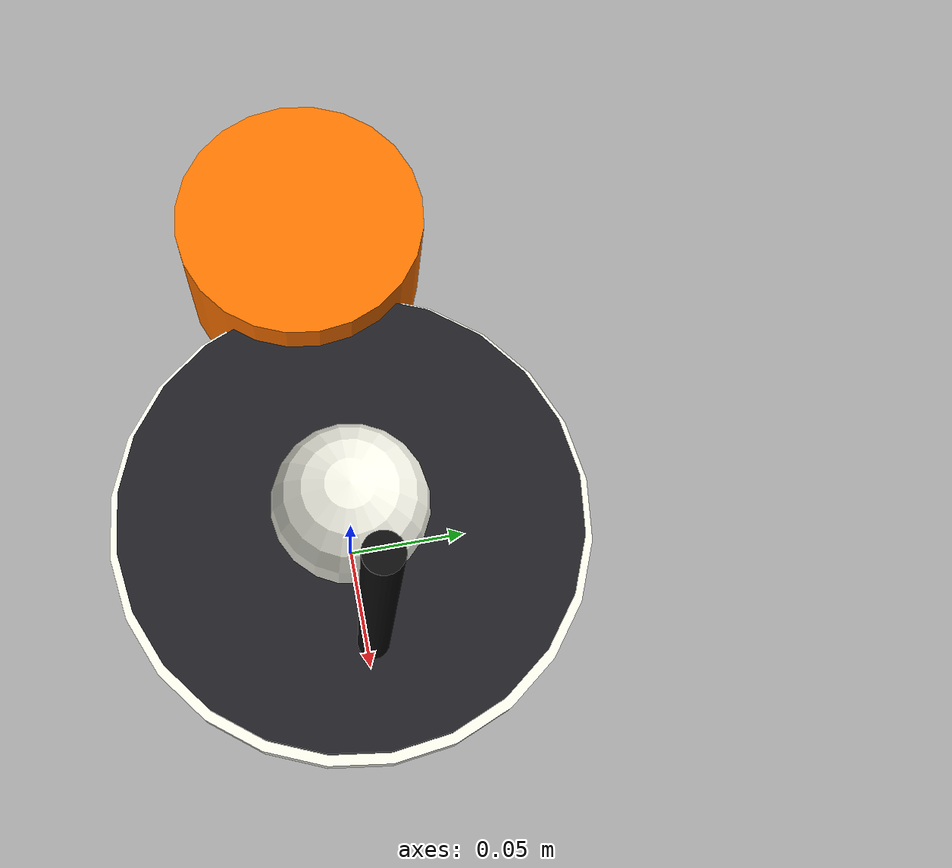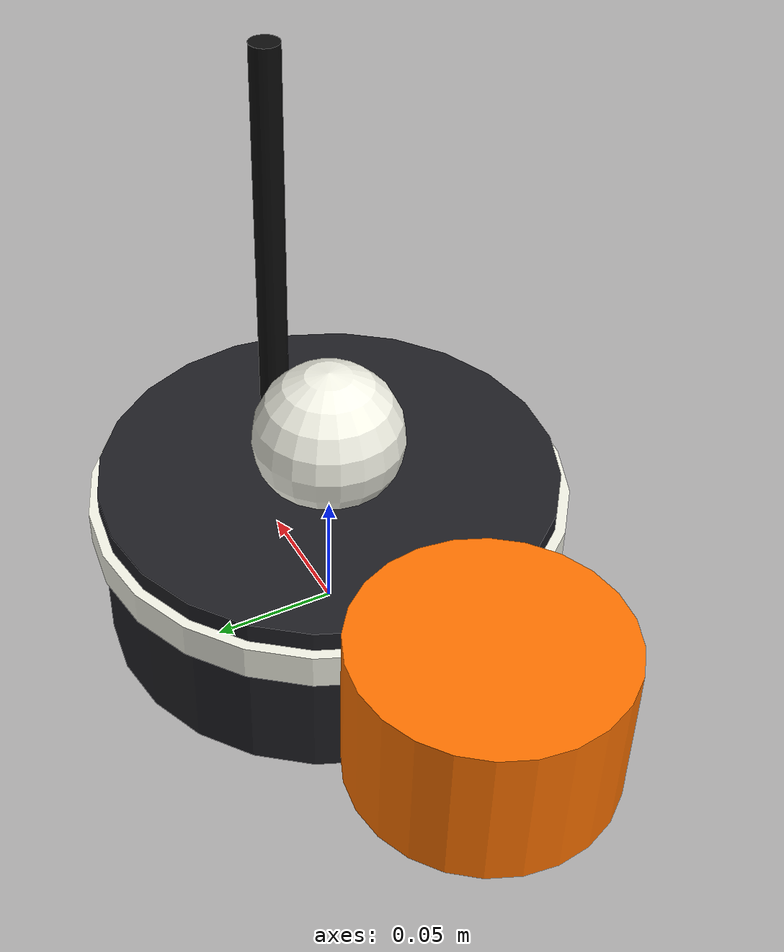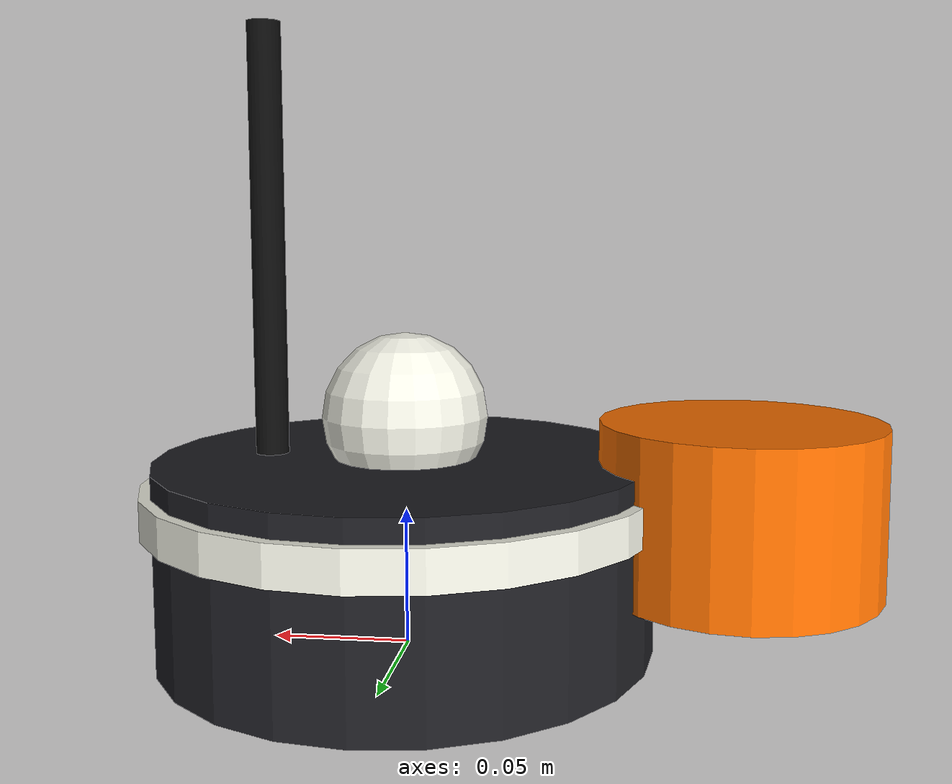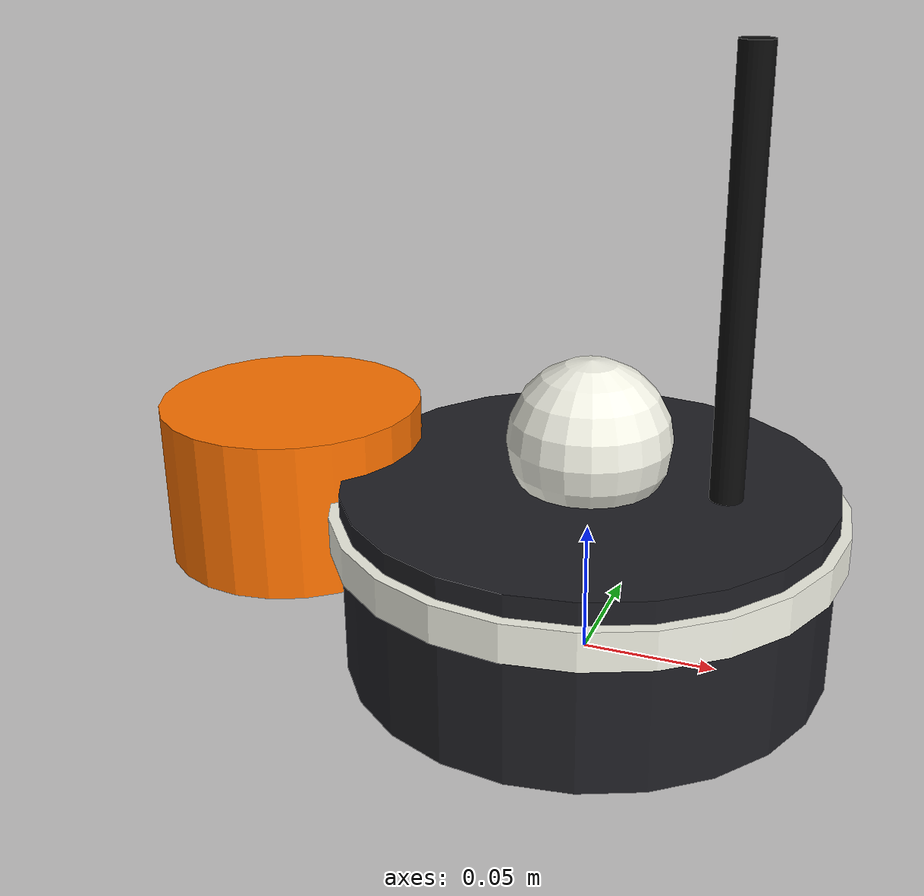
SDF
<?xml version="1.0" ?>
<sdf version="1.9">
  <model name="beacon_entrance">
    <link name="body">
      <pose>0 0 0.035 0 0 0</pose>
      <inertial><mass>0.25</mass><inertia><ixx>0.0006</ixx><ixy>0</ixy><ixz>0</ixz>
        <iyy>0.0006</iyy><iyz>0</iyz><izz>0.001</izz></inertia></inertial>
      <collision name="c">
        <geometry><cylinder><radius>0.09</radius><length>0.07</length></cylinder></geometry>
        <surface><contact><collide_bitmask>0x02</collide_bitmask></contact></surface>
      </collision>
      <visual name="puck"><pose>0 0 0 0 0 0</pose><geometry><cylinder><radius>0.09</radius><length>0.07</length></cylinder></geometry><material><ambient>0.12 0.12 0.14 1</ambient><diffuse>0.12 0.12 0.14 1</diffuse><specular>0.1 0.1 0.1 1</specular></material><cast_shadows>false</cast_shadows></visual>
      <visual name="ring"><pose>0 0 0.02 0 0 0</pose><geometry><cylinder><radius>0.094</radius><length>0.014</length></cylinder></geometry><material><ambient>0.95 0.95 0.9 1</ambient><diffuse>0.95 0.95 0.9 1</diffuse><specular>0.1 0.1 0.1 1</specular><emissive>0.95 0.95 0.9 1</emissive></material><cast_shadows>false</cast_shadows></visual>
      <visual name="led"><pose>0 0 0.05 0 0 0</pose><geometry><sphere><radius>0.03</radius></sphere>
        </geometry><material><ambient>0.95 0.95 0.9 1</ambient><diffuse>0.95 0.95 0.9 1</diffuse><specular>0.1 0.1 0.1 1</specular><emissive>0.95 0.95 0.9 1</emissive></material></visual>
      <visual name="antenna"><pose>0.05 0 0.11 0 0 0</pose><geometry><cylinder><radius>0.006</radius><length>0.16</length></cylinder></geometry><material><ambient>0.05 0.05 0.05 1</ambient><diffuse>0.05 0.05 0.05 1</diffuse><specular>0.1 0.1 0.1 1</specular></material><cast_shadows>false</cast_shadows></visual>
      <visual name="spool"><pose>-0.12 0 0.02 0 0 0</pose><geometry><cylinder><radius>0.05</radius><length>0.06</length></cylinder></geometry><material><ambient>1 0.45 0</ambient><diffuse>1 0.45 0</diffuse><specular>0.1 0.1 0.1 1</specular><emissive>0.5 0.2 0 1</emissive></material><cast_shadows>false</cast_shadows></visual>
    </link>
  </model>
</sdf>
